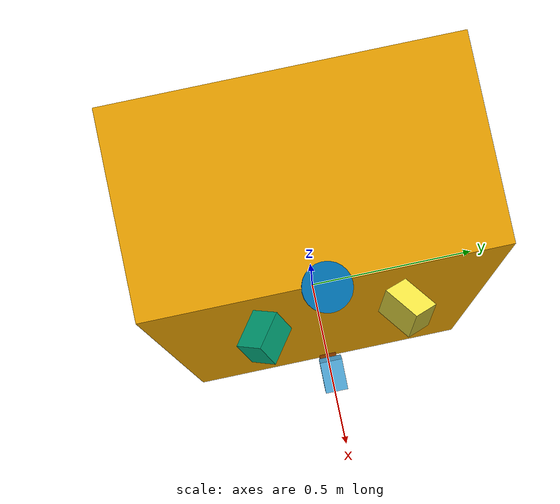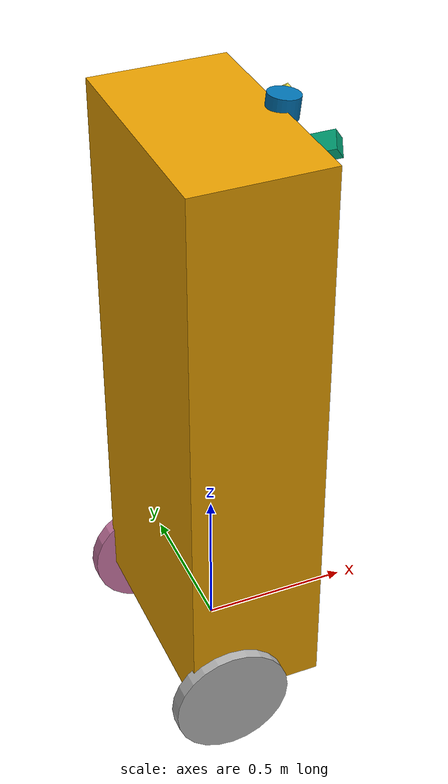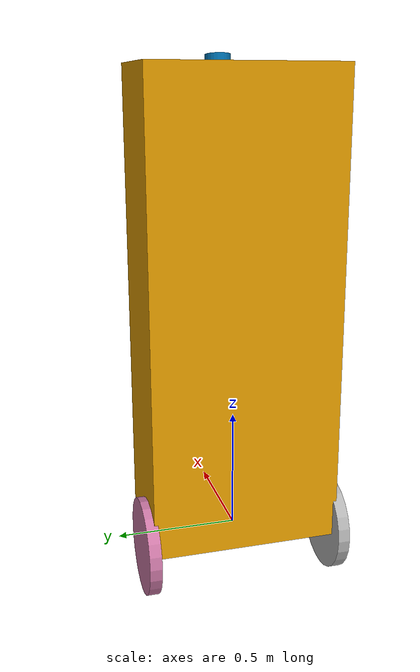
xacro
<?xml version="1.0"?>
<robot xmlns:xacro="http://www.ros.org/wiki/xacro"  name="navvis">

    <link name="base">
        <visual>
            <origin xyz="0.0 0.0 0.96" rpy="0.0 0.0 0.0"/>
            <geometry>
                <box size="0.45 0.78 1.92"/>
            </geometry>
        </visual>
        <collision>
            <origin xyz="0.0 0.0 0.96" rpy="0.0 0.0 0.0"/>
            <geometry>
                <box size="0.45 0.78 1.92"/>
            </geometry>
        </collision>
    </link>

    <link name="laser_vert_bottom">
        <visual>
            <origin xyz="0.0 0.0 0.0" rpy="0.0 0.0 0.0"/>
            <geometry>
                <box size="0.062 0.062 0.087"/>
            </geometry>
        </visual>
        <collision>
            <origin xyz="0.0 0.0 0.0" rpy="0.0 0.0 0.0"/>
            <geometry>
                <box size="0.062 0.062 0.087"/>
            </geometry>
        </collision>
    </link>
    <joint name="base_laser_vert_bottom_joint" type="fixed">
        <parent link="base" />
        <child link="laser_vert_bottom" />
        <origin xyz="0.3158 -0.0021 0.5100" rpy="3.1355 -1.3045 0.0025" />
    </joint>

    <link name="laser_vert_top_right">
        <visual>
            <origin xyz="0.0 0.0 0.0" rpy="0.0 0.0 0.0"/>
            <geometry>
                <box size="0.062 0.062 0.087"/>
            </geometry>
        </visual>
        <collision>
            <origin xyz="0.0 0.0 0.0" rpy="0.0 0.0 0.0"/>
            <geometry>
                <box size="0.062 0.062 0.087"/>
            </geometry>
        </collision>
    </link>
    <joint name="base_laser_vert_top_right_joint" type="fixed">
        <parent link="base" />
        <child link="laser_vert_top_right" />
        <origin xyz="0.2978 -0.1450 1.8451" rpy="-1.1760 0.6313 -1.9377" />
    </joint>

    <link name="laser_vert_top_left">
        <visual>
            <origin xyz="0.0 0.0 0.0" rpy="0.0 0.0 0.0"/>
            <geometry>
                <box size="0.062 0.062 0.087"/>
            </geometry>
        </visual>
        <collision>
            <origin xyz="0.0 0.0 0.0" rpy="0.0 0.0 0.0"/>
            <geometry>
                <box size="0.062 0.062 0.087"/>
            </geometry>
        </collision>
    </link>
    <joint name="base_laser_vert_top_left_joint" type="fixed">
        <parent link="base" />
        <child link="laser_vert_top_left" />
        <origin xyz="0.2997 0.1531 1.8443" rpy="1.1780 0.6198 1.9560" />
    </joint>

    <link name="laser_horiz">
        <visual>
            <origin xyz="0.0 0.0 0.0" rpy="0.0 0.0 0.0"/>
            <geometry>
                <cylinder radius="0.052" length="0.072"/>
            </geometry>
        </visual>
        <collision>
            <origin xyz="0.0 0.0 0.0" rpy="0.0 0.0 0.0"/>
            <geometry>
                <cylinder radius="0.0052" length="0.0072"/>
            </geometry>
        </collision>
    </link>
    <joint name="base_laser_horiz_joint" type="fixed">
        <parent link="base" />
        <child link="laser_horiz" />
        <origin xyz="0.2325 0.0001 1.9201" rpy="-0.0012 0.1146 -0.0015" />
    </joint>

    <link name="wheel_center">
        <visual>
            <origin xyz="0.0 0.0 0.0" rpy="0.0 0.0 0.0"/>
            <geometry>
                <cylinder radius="0.15" length="0.05"/>
            </geometry>
        </visual>
        <collision>
            <origin xyz="0.0 0.0 0.0" rpy="0.0 0.0 0.0"/>
            <geometry>
                <cylinder radius="0.15" length="0.05"/>
            </geometry>
        </collision>
    </link>
    <joint name="base_wheel_center_joint" type="continuous">
        <limit effort="1000.0" velocity="100.0"/>
        <axis xyz="0.0 0.0 1.0"/>
        <parent link="base" />
        <child link="wheel_center" />
        <origin xyz="0.10 0.0 0.0" rpy="-1.5708 0.0 0.0" />
        <axis xyz="0.0 0.0 1.0"/>
        <limit effort="10.0" lower="0.0" upper="2.0" velocity="0.5"/>
    </joint>

    <xacro:macro name="xacro_name" params="side reflect">
        <link name="wheel_${side}">
        <visual>
            <origin xyz="0.0 0.0 0.0" rpy="0.0 0.0 0.0"/>
            <geometry>
                <cylinder radius="0.2" length="0.05"/>
            </geometry>
        </visual>
        <collision>
            <origin xyz="0.0 0.0 0.0" rpy="0.0 0.0 0.0"/>
            <geometry>
                <cylinder radius="0.2" length="0.05"/>
            </geometry>
        </collision>
    </link>
    <joint name="base_wheel_${side}_joint" type="continuous">
        <limit effort="1000.0" velocity="100.0"/>
        <axis xyz="0.0 0.0 1.0"/>
        <parent link="base" />
        <child link="wheel_${side}" />
        <origin xyz="-0.10 ${reflect * 0.4} 0.0" rpy="-1.5708 0.0 0.0" />
        <axis xyz="0.0 0.0 1.0"/>
        <limit effort="10.0" lower="0.0" upper="2.0" velocity="0.5"/>
    </joint>
    </xacro:macro>
    <xacro:xacro_name side="left" reflect="1" />
    <xacro:xacro_name side="right" reflect="-1" />

</robot>
